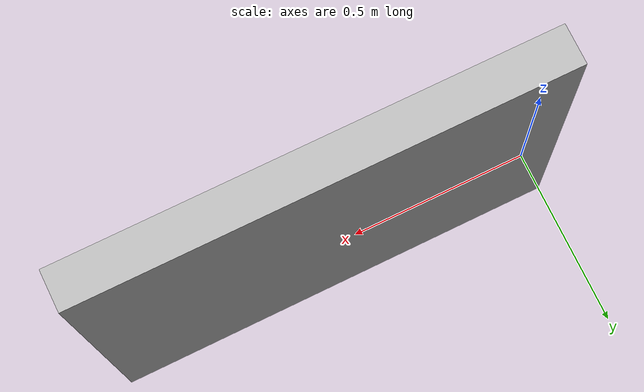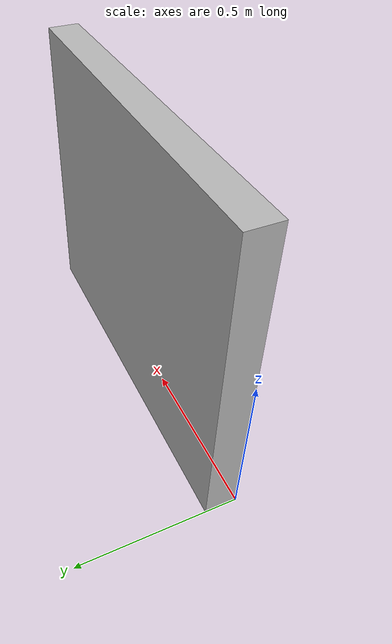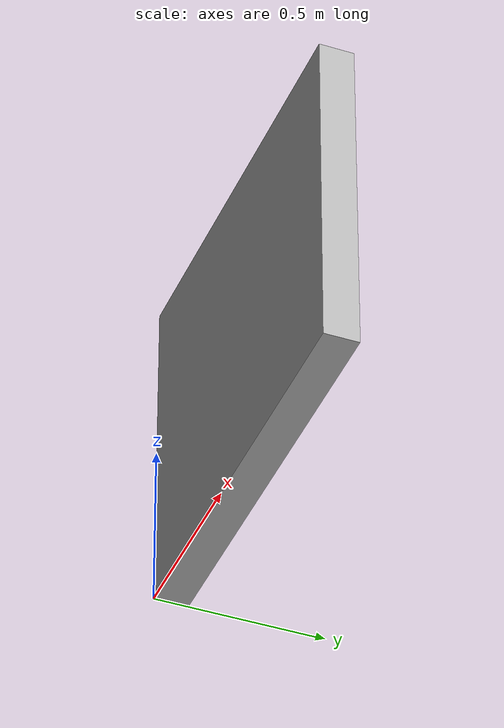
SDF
<?xml version="1.0" ?>
<sdf version="1.6">
  <model name="wall100single">
    <static>true</static>
    <pose>0 0 0 0 0 0</pose>
    <link name="link">
      <collision name="collision">
        <geometry>
          <mesh>
            <scale>-0.01 0.01 0.01</scale>
            <uri>model://wall100single/wall100single.stl</uri>
          </mesh>
        </geometry>
        <surface>
          <friction>
            <ode>
              <mu>100</mu>
              <mu2>50</mu2>
            </ode>
          </friction>
        </surface>
      </collision>
      <visual name="visual">
        <geometry>
          <mesh>
            <scale>-0.01 0.01 0.01</scale>
            <uri>model://wall100single/wall100single.stl</uri>
          </mesh>
        </geometry>
      </visual>
    </link>
  </model>
</sdf>
